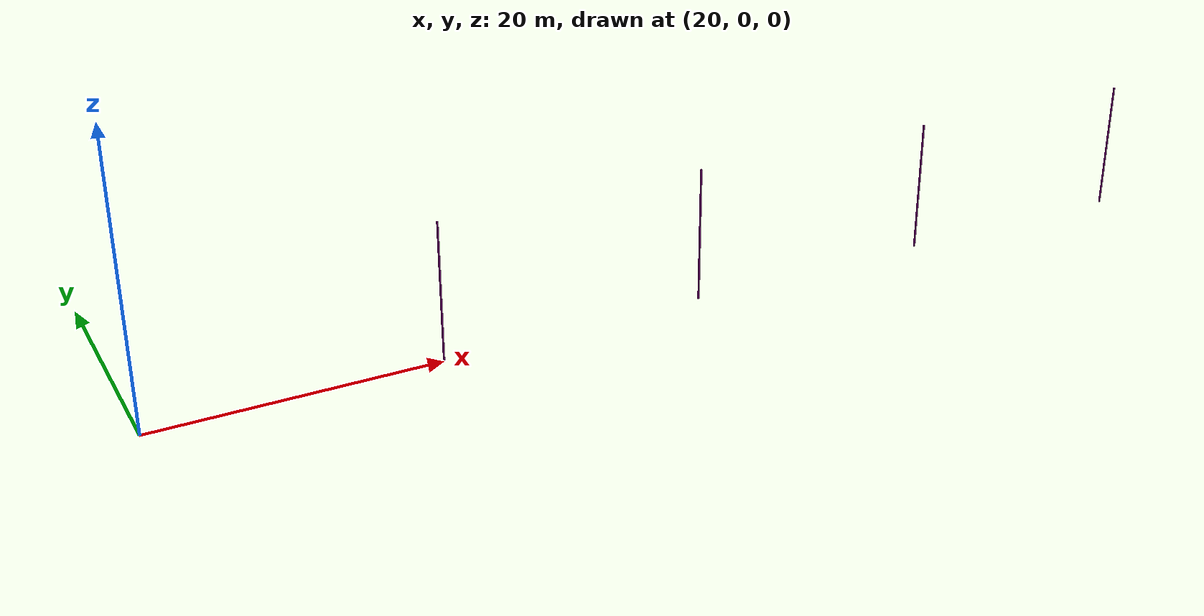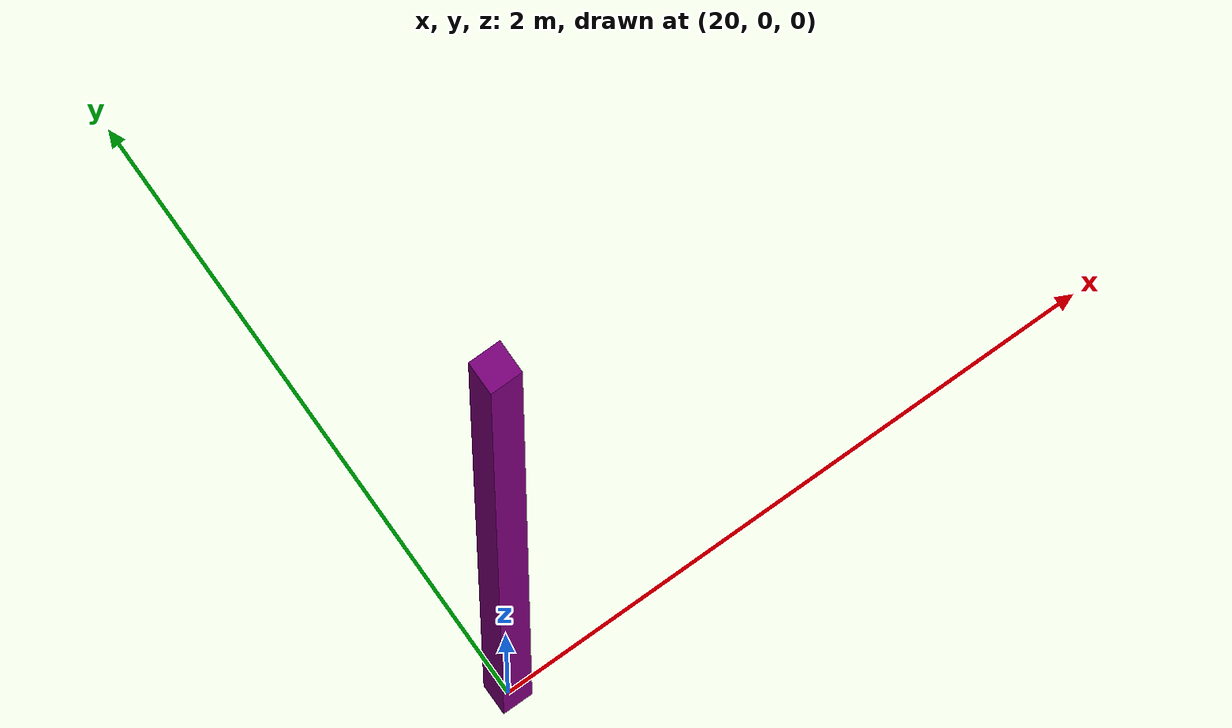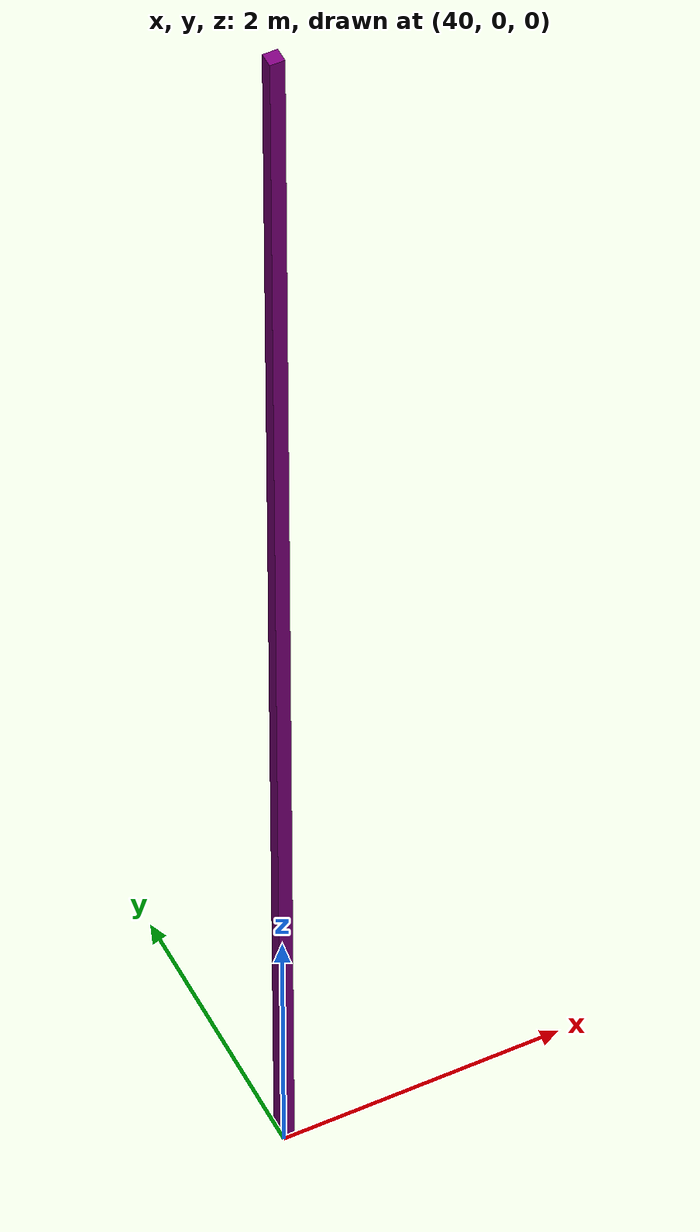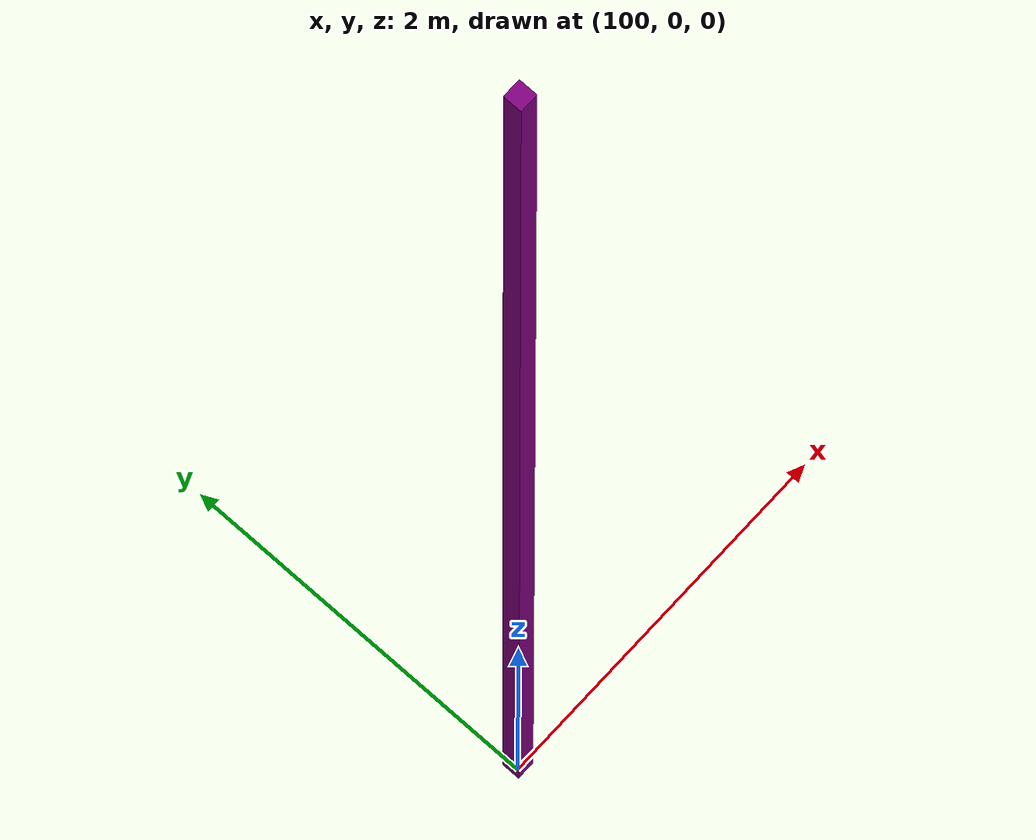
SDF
<?xml version='1.0'?>
<sdf version='1.7'>
  <model name="Waypoints">
    <static>1</static>
    <link name="Waypoint 1">
    <visual name="b">
      <cast_shadows>0</cast_shadows>
      <pose>20  0 5.1 0 0 0</pose>
      <geometry>
      <box>
        <size>0.1 0.1 10</size>
      </box>
      </geometry>
      <material>
      <ambient>0.5 0 0.5 1</ambient>
      <diffuse>0.5 0 0.5 1</diffuse>
      <emissive>0.5 0 0.5 1</emissive>
      <specular>0.6 0.6 0.6 1</specular>
      </material>
    </visual>
    </link>
    <link name="Waypoint 2">
    <visual name="b">
      <cast_shadows>0</cast_shadows>
      <pose>40  0 5.1 0 0 0</pose>
      <geometry>
      <box>
        <size>0.1 0.1 10</size>
      </box>
      </geometry>
      <material>
      <ambient>0.5 0 0.5 1</ambient>
      <diffuse>0.5 0 0.5 1</diffuse>
      <emissive>0.5 0 0.5 1</emissive>
      <specular>0.6 0.6 0.6 1</specular>
      </material>
    </visual>
    </link>
    <link name="Waypoint 3">
    <visual name="b">
      <cast_shadows>0</cast_shadows>
      <pose>60  0 5.1 0 0 0</pose>
      <geometry>
      <box>
        <size>0.1 0.1 10</size>
      </box>
      </geometry>
      <material>
      <ambient>0.5 0 0.5 1</ambient>
      <diffuse>0.5 0 0.5 1</diffuse>
      <emissive>0.5 0 0.5 1</emissive>
      <specular>0.6 0.6 0.6 1</specular>
      </material>
    </visual>
    </link>
    <link name="Waypoint 4">
    <visual name="b">
      <cast_shadows>0</cast_shadows>
      <pose>80  0 5.1 0 0 0</pose>
      <geometry>
      <box>
        <size>0.1 0.1 10</size>
      </box>
      </geometry>
      <material>
      <ambient>0.5 0 0.5 1</ambient>
      <diffuse>0.5 0 0.5 1</diffuse>
      <emissive>0.5 0 0.5 1</emissive>
      <specular>0.6 0.6 0.6 1</specular>
      </material>
    </visual>
    </link>
    <link name="Waypoint 5">
    <visual name="b">
      <cast_shadows>0</cast_shadows>
      <pose>100  0 5.1 0 0 0</pose>
      <geometry>
      <box>
        <size>0.1 0.1 10</size>
      </box>
      </geometry>
      <material>
      <ambient>0.5 0 0.5 1</ambient>
      <diffuse>0.5 0 0.5 1</diffuse>
      <emissive>0.5 0 0.5 1</emissive>
      <specular>0.6 0.6 0.6 1</specular>
      </material>
    </visual>
    </link>
  </model>
</sdf>
